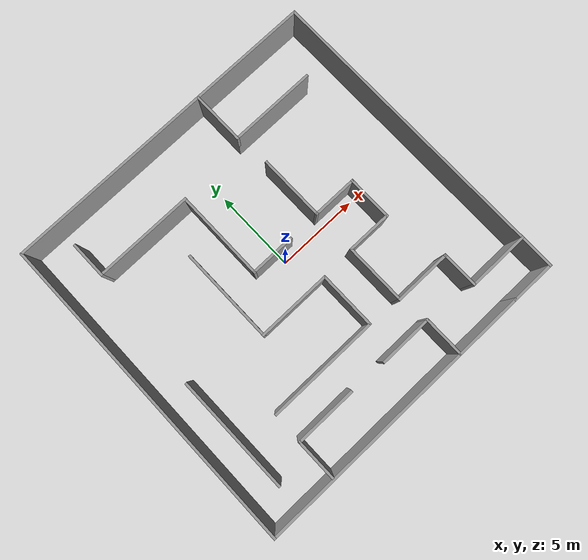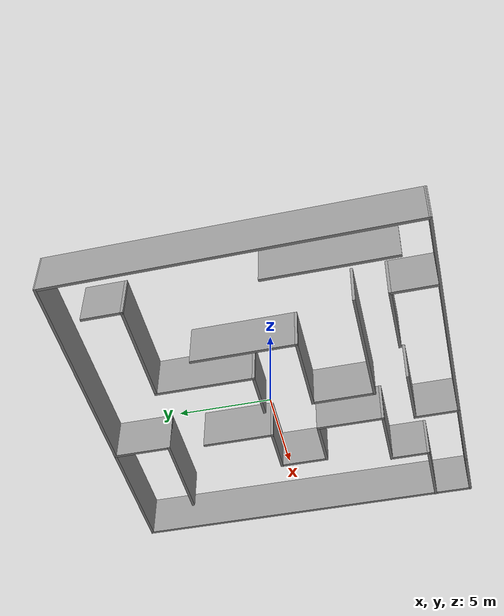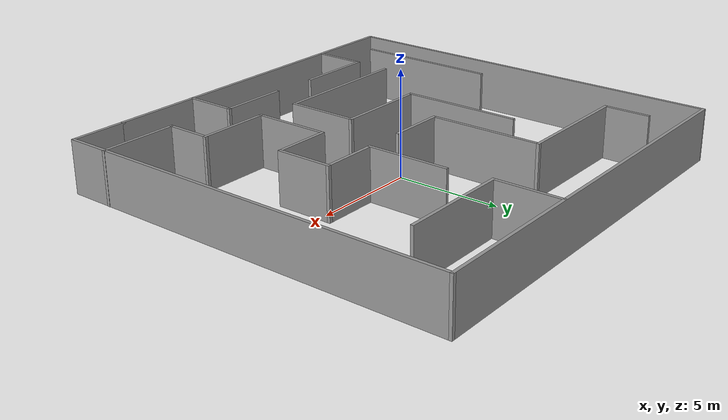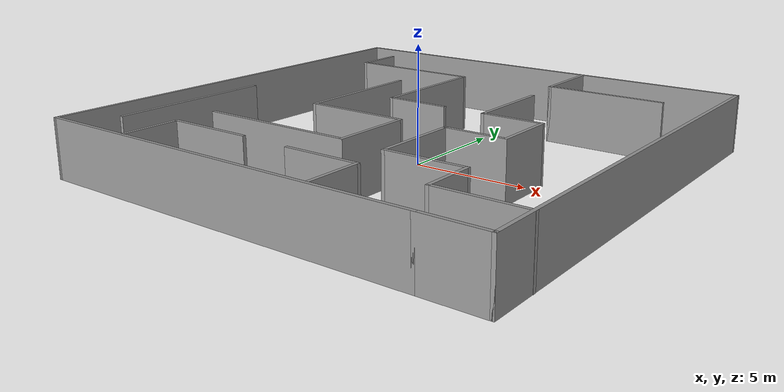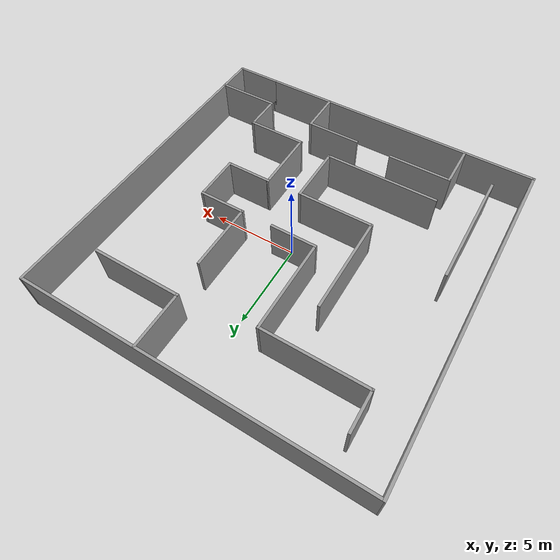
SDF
<?xml version='1.0'?>
<sdf version='1.7'>
  <model name='20231206.world'>
    <pose>-0.134977 -0.121571 0 0 -0 0</pose>
    <link name='Wall_18'>
      <collision name='Wall_18_Collision'>
        <geometry>
          <box>
            <size>17.25 0.15 2.5</size>
          </box>
        </geometry>
        <pose>0 0 1.25 0 -0 0</pose>
      </collision>
      <visual name='Wall_18_Visual'>
        <pose>0 0 1.25 0 -0 0</pose>
        <geometry>
          <box>
            <size>17.25 0.15 2.5</size>
          </box>
        </geometry>
        <material>
          <script>
            <uri>file://media/materials/scripts/gazebo.material</uri>
            <name>Gazebo/Grey</name>
          </script>
          <ambient>1 1 1 1</ambient>
        </material>
        <meta>
          <layer>0</layer>
        </meta>
      </visual>
      <pose>-1.30548 -9.675 0 0 -0 0</pose>
    </link>
    <link name='Wall_20'>
      <collision name='Wall_20_Collision'>
        <geometry>
          <box>
            <size>2.75 0.15 2.5</size>
          </box>
        </geometry>
        <pose>0 0 1.25 0 -0 0</pose>
      </collision>
      <visual name='Wall_20_Visual'>
        <pose>0 0 1.25 0 -0 0</pose>
        <geometry>
          <box>
            <size>2.75 0.15 2.5</size>
          </box>
        </geometry>
        <material>
          <script>
            <uri>file://media/materials/scripts/gazebo.material</uri>
            <name>Gazebo/Grey</name>
          </script>
          <ambient>1 1 1 1</ambient>
        </material>
        <meta>
          <layer>0</layer>
        </meta>
      </visual>
      <pose>8.54452 -9.675 0 0 -0 0</pose>
    </link>
    <link name='Wall_21'>
      <collision name='Wall_21_Collision'>
        <geometry>
          <box>
            <size>19.5 0.15 2.5</size>
          </box>
        </geometry>
        <pose>0 0 1.25 0 -0 0</pose>
      </collision>
      <visual name='Wall_21_Visual'>
        <pose>0 0 1.25 0 -0 0</pose>
        <geometry>
          <box>
            <size>19.5 0.15 2.5</size>
          </box>
        </geometry>
        <material>
          <script>
            <uri>file://media/materials/scripts/gazebo.material</uri>
            <name>Gazebo/Grey</name>
          </script>
          <ambient>1 1 1 1</ambient>
        </material>
        <meta>
          <layer>0</layer>
        </meta>
      </visual>
      <pose>9.84452 0 0 0 -0 1.5708</pose>
    </link>
    <link name='Wall_22'>
      <collision name='Wall_22_Collision'>
        <geometry>
          <box>
            <size>19.75 0.15 2.5</size>
          </box>
        </geometry>
        <pose>0 0 1.25 0 -0 0</pose>
      </collision>
      <visual name='Wall_22_Visual'>
        <pose>0 0 1.25 0 -0 0</pose>
        <geometry>
          <box>
            <size>19.75 0.15 2.5</size>
          </box>
        </geometry>
        <material>
          <script>
            <uri>file://media/materials/scripts/gazebo.material</uri>
            <name>Gazebo/Grey</name>
          </script>
          <ambient>1 1 1 1</ambient>
        </material>
        <meta>
          <layer>0</layer>
        </meta>
      </visual>
      <pose>0.044517 9.675 0 0 -0 3.14159</pose>
    </link>
    <link name='Wall_23'>
      <collision name='Wall_23_Collision'>
        <geometry>
          <box>
            <size>19.5003 0.15 2.5</size>
          </box>
        </geometry>
        <pose>0 0 1.25 0 -0 0</pose>
      </collision>
      <visual name='Wall_23_Visual'>
        <pose>0 0 1.25 0 -0 0</pose>
        <geometry>
          <box>
            <size>19.5003 0.15 2.5</size>
          </box>
        </geometry>
        <material>
          <script>
            <uri>file://media/materials/scripts/gazebo.material</uri>
            <name>Gazebo/Grey</name>
          </script>
          <ambient>1 1 1 1</ambient>
        </material>
        <meta>
          <layer>0</layer>
        </meta>
      </visual>
      <pose>-9.80548 0 0 0 -0 -1.57596</pose>
    </link>
    <link name='Wall_25'>
      <collision name='Wall_25_Collision'>
        <geometry>
          <box>
            <size>3.75 0.15 2.5</size>
          </box>
        </geometry>
        <pose>0 0 1.25 0 -0 0</pose>
      </collision>
      <visual name='Wall_25_Visual'>
        <pose>0 0 1.25 0 -0 0</pose>
        <geometry>
          <box>
            <size>3.75 0.15 2.5</size>
          </box>
        </geometry>
        <material>
          <script>
            <uri>file://media/materials/scripts/gazebo.material</uri>
            <name>Gazebo/Grey</name>
          </script>
          <ambient>1 1 1 1</ambient>
        </material>
        <meta>
          <layer>0</layer>
        </meta>
      </visual>
      <pose>8.05587 -7.65949 0 0 -0 3.14159</pose>
    </link>
    <link name='Wall_26'>
      <collision name='Wall_26_Collision'>
        <geometry>
          <box>
            <size>2.25 0.15 2.5</size>
          </box>
        </geometry>
        <pose>0 0 1.25 0 -0 0</pose>
      </collision>
      <visual name='Wall_26_Visual'>
        <pose>0 0 1.25 0 -0 0</pose>
        <geometry>
          <box>
            <size>2.25 0.15 2.5</size>
          </box>
        </geometry>
        <material>
          <script>
            <uri>file://media/materials/scripts/gazebo.material</uri>
            <name>Gazebo/Grey</name>
          </script>
          <ambient>1 1 1 1</ambient>
        </material>
        <meta>
          <layer>0</layer>
        </meta>
      </visual>
      <pose>6.25587 -6.60949 0 0 -0 1.5708</pose>
    </link>
    <link name='Wall_27'>
      <collision name='Wall_27_Collision'>
        <geometry>
          <box>
            <size>3.5 0.15 2.5</size>
          </box>
        </geometry>
        <pose>0 0 1.25 0 -0 0</pose>
      </collision>
      <visual name='Wall_27_Visual'>
        <pose>0 0 1.25 0 -0 0</pose>
        <geometry>
          <box>
            <size>3.5 0.15 2.5</size>
          </box>
        </geometry>
        <material>
          <script>
            <uri>file://media/materials/scripts/gazebo.material</uri>
            <name>Gazebo/Grey</name>
          </script>
          <ambient>1 1 1 1</ambient>
        </material>
        <meta>
          <layer>0</layer>
        </meta>
      </visual>
      <pose>4.58087 -5.55949 0 0 -0 3.14159</pose>
    </link>
    <link name='Wall_28'>
      <collision name='Wall_28_Collision'>
        <geometry>
          <box>
            <size>3.75 0.15 2.5</size>
          </box>
        </geometry>
        <pose>0 0 1.25 0 -0 0</pose>
      </collision>
      <visual name='Wall_28_Visual'>
        <pose>0 0 1.25 0 -0 0</pose>
        <geometry>
          <box>
            <size>3.75 0.15 2.5</size>
          </box>
        </geometry>
        <material>
          <script>
            <uri>file://media/materials/scripts/gazebo.material</uri>
            <name>Gazebo/Grey</name>
          </script>
          <ambient>1 1 1 1</ambient>
        </material>
        <meta>
          <layer>0</layer>
        </meta>
      </visual>
      <pose>2.90587 -3.75949 0 0 -0 1.5708</pose>
    </link>
    <link name='Wall_29'>
      <collision name='Wall_29_Collision'>
        <geometry>
          <box>
            <size>2.75 0.15 2.5</size>
          </box>
        </geometry>
        <pose>0 0 1.25 0 -0 0</pose>
      </collision>
      <visual name='Wall_29_Visual'>
        <pose>0 0 1.25 0 -0 0</pose>
        <geometry>
          <box>
            <size>2.75 0.15 2.5</size>
          </box>
        </geometry>
        <material>
          <script>
            <uri>file://media/materials/scripts/gazebo.material</uri>
            <name>Gazebo/Grey</name>
          </script>
          <ambient>1 1 1 1</ambient>
        </material>
        <meta>
          <layer>0</layer>
        </meta>
      </visual>
      <pose>4.20587 -1.95949 0 0 -0 0</pose>
    </link>
    <link name='Wall_30'>
      <collision name='Wall_30_Collision'>
        <geometry>
          <box>
            <size>2.75 0.15 2.5</size>
          </box>
        </geometry>
        <pose>0 0 1.25 0 -0 0</pose>
      </collision>
      <visual name='Wall_30_Visual'>
        <pose>0 0 1.25 0 -0 0</pose>
        <geometry>
          <box>
            <size>2.75 0.15 2.5</size>
          </box>
        </geometry>
        <material>
          <script>
            <uri>file://media/materials/scripts/gazebo.material</uri>
            <name>Gazebo/Grey</name>
          </script>
          <ambient>1 1 1 1</ambient>
        </material>
        <meta>
          <layer>0</layer>
        </meta>
      </visual>
      <pose>5.50587 -0.659488 0 0 -0 1.5708</pose>
    </link>
    <link name='Wall_33'>
      <collision name='Wall_33_Collision'>
        <geometry>
          <box>
            <size>2.5 0.15 2.5</size>
          </box>
        </geometry>
        <pose>0 0 1.25 0 -0 0</pose>
      </collision>
      <visual name='Wall_33_Visual'>
        <pose>0 0 1.25 0 -0 0</pose>
        <geometry>
          <box>
            <size>2.5 0.15 2.5</size>
          </box>
        </geometry>
        <material>
          <script>
            <uri>file://media/materials/scripts/gazebo.material</uri>
            <name>Gazebo/Grey</name>
          </script>
          <ambient>1 1 1 1</ambient>
        </material>
        <meta>
          <layer>0</layer>
        </meta>
      </visual>
      <pose>3.18587 -8.46249 0 0 -0 1.5708</pose>
    </link>
    <link name='Wall_34'>
      <collision name='Wall_34_Collision'>
        <geometry>
          <box>
            <size>3.25 0.15 2.5</size>
          </box>
        </geometry>
        <pose>0 0 1.25 0 -0 0</pose>
      </collision>
      <visual name='Wall_34_Visual'>
        <pose>0 0 1.25 0 -0 0</pose>
        <geometry>
          <box>
            <size>3.25 0.15 2.5</size>
          </box>
        </geometry>
        <material>
          <script>
            <uri>file://media/materials/scripts/gazebo.material</uri>
            <name>Gazebo/Grey</name>
          </script>
          <ambient>1 1 1 1</ambient>
        </material>
        <meta>
          <layer>0</layer>
        </meta>
      </visual>
      <pose>1.63587 -7.28749 0 0 -0 3.14159</pose>
    </link>
    <link name='Wall_36'>
      <collision name='Wall_36_Collision'>
        <geometry>
          <box>
            <size>3.75 0.15 2.5</size>
          </box>
        </geometry>
        <pose>0 0 1.25 0 -0 0</pose>
      </collision>
      <visual name='Wall_36_Visual'>
        <pose>0 0 1.25 0 -0 0</pose>
        <geometry>
          <box>
            <size>3.75 0.15 2.5</size>
          </box>
        </geometry>
        <material>
          <script>
            <uri>file://media/materials/scripts/gazebo.material</uri>
            <name>Gazebo/Grey</name>
          </script>
          <ambient>1 1 1 1</ambient>
        </material>
        <meta>
          <layer>0</layer>
        </meta>
      </visual>
      <pose>-3.99613 -7.19949 0 0 -0 3.14159</pose>
    </link>
    <link name='Wall_37'>
      <collision name='Wall_37_Collision'>
        <geometry>
          <box>
            <size>2.5 0.15 2.5</size>
          </box>
        </geometry>
        <pose>0 0 1.25 0 -0 0</pose>
      </collision>
      <visual name='Wall_37_Visual'>
        <pose>0 0 1.25 0 -0 0</pose>
        <geometry>
          <box>
            <size>2.5 0.15 2.5</size>
          </box>
        </geometry>
        <material>
          <script>
            <uri>file://media/materials/scripts/gazebo.material</uri>
            <name>Gazebo/Grey</name>
          </script>
          <ambient>1 1 1 1</ambient>
        </material>
        <meta>
          <layer>0</layer>
        </meta>
      </visual>
      <pose>-5.79613 -8.37449 0 0 -0 -1.5708</pose>
    </link>
    <link name='Wall_39'>
      <collision name='Wall_39_Collision'>
        <geometry>
          <box>
            <size>7 0.15 2.5</size>
          </box>
        </geometry>
        <pose>0 0 1.25 0 -0 0</pose>
      </collision>
      <visual name='Wall_39_Visual'>
        <pose>0 0 1.25 0 -0 0</pose>
        <geometry>
          <box>
            <size>7 0.15 2.5</size>
          </box>
        </geometry>
        <material>
          <script>
            <uri>file://media/materials/scripts/gazebo.material</uri>
            <name>Gazebo/Grey</name>
          </script>
          <ambient>1 1 1 1</ambient>
        </material>
        <meta>
          <layer>0</layer>
        </meta>
      </visual>
      <pose>-7.99213 -4.60249 0 0 -0 1.5708</pose>
    </link>
    <link name='Wall_41'>
      <collision name='Wall_41_Collision'>
        <geometry>
          <box>
            <size>6.75 0.15 2.5</size>
          </box>
        </geometry>
        <pose>0 0 1.25 0 -0 0</pose>
      </collision>
      <visual name='Wall_41_Visual'>
        <pose>0 0 1.25 0 -0 0</pose>
        <geometry>
          <box>
            <size>6.75 0.15 2.5</size>
          </box>
        </geometry>
        <material>
          <script>
            <uri>file://media/materials/scripts/gazebo.material</uri>
            <name>Gazebo/Grey</name>
          </script>
          <ambient>1 1 1 1</ambient>
        </material>
        <meta>
          <layer>0</layer>
        </meta>
      </visual>
      <pose>-2.41413 -5.40549 0 0 -0 3.14159</pose>
    </link>
    <link name='Wall_43'>
      <collision name='Wall_43_Collision'>
        <geometry>
          <box>
            <size>3.5 0.15 2.5</size>
          </box>
        </geometry>
        <pose>0 0 1.25 0 -0 0</pose>
      </collision>
      <visual name='Wall_43_Visual'>
        <pose>0 0 1.25 0 -0 0</pose>
        <geometry>
          <box>
            <size>3.5 0.15 2.5</size>
          </box>
        </geometry>
        <material>
          <script>
            <uri>file://media/materials/scripts/gazebo.material</uri>
            <name>Gazebo/Grey</name>
          </script>
          <ambient>1 1 1 1</ambient>
        </material>
        <meta>
          <layer>0</layer>
        </meta>
      </visual>
      <pose>0.885871 -3.73049 0 0 -0 1.5708</pose>
    </link>
    <link name='Wall_44'>
      <collision name='Wall_44_Collision'>
        <geometry>
          <box>
            <size>4.5 0.15 2.5</size>
          </box>
        </geometry>
        <pose>0 0 1.25 0 -0 0</pose>
      </collision>
      <visual name='Wall_44_Visual'>
        <pose>0 0 1.25 0 -0 0</pose>
        <geometry>
          <box>
            <size>4.5 0.15 2.5</size>
          </box>
        </geometry>
        <material>
          <script>
            <uri>file://media/materials/scripts/gazebo.material</uri>
            <name>Gazebo/Grey</name>
          </script>
          <ambient>1 1 1 1</ambient>
        </material>
        <meta>
          <layer>0</layer>
        </meta>
      </visual>
      <pose>-1.28913 -2.05549 0 0 -0 3.14159</pose>
    </link>
    <link name='Wall_45'>
      <collision name='Wall_45_Collision'>
        <geometry>
          <box>
            <size>5.75 0.15 2.5</size>
          </box>
        </geometry>
        <pose>0 0 1.25 0 -0 0</pose>
      </collision>
      <visual name='Wall_45_Visual'>
        <pose>0 0 1.25 0 -0 0</pose>
        <geometry>
          <box>
            <size>5.75 0.15 2.5</size>
          </box>
        </geometry>
        <material>
          <script>
            <uri>file://media/materials/scripts/gazebo.material</uri>
            <name>Gazebo/Grey</name>
          </script>
          <ambient>1 1 1 1</ambient>
        </material>
        <meta>
          <layer>0</layer>
        </meta>
      </visual>
      <pose>-3.46413 0.744512 0 0 -0 1.5708</pose>
    </link>
    <link name='Wall_47'>
      <collision name='Wall_47_Collision'>
        <geometry>
          <box>
            <size>5.5 0.15 2.5</size>
          </box>
        </geometry>
        <pose>0 0 1.25 0 -0 0</pose>
      </collision>
      <visual name='Wall_47_Visual'>
        <pose>0 0 1.25 0 -0 0</pose>
        <geometry>
          <box>
            <size>5.5 0.15 2.5</size>
          </box>
        </geometry>
        <material>
          <script>
            <uri>file://media/materials/scripts/gazebo.material</uri>
            <name>Gazebo/Grey</name>
          </script>
          <ambient>1 1 1 1</ambient>
        </material>
        <meta>
          <layer>0</layer>
        </meta>
      </visual>
      <pose>-1.59413 3.31551 0 0 -0 1.5708</pose>
    </link>
    <link name='Wall_48'>
      <collision name='Wall_48_Collision'>
        <geometry>
          <box>
            <size>6 0.15 2.5</size>
          </box>
        </geometry>
        <pose>0 0 1.25 0 -0 0</pose>
      </collision>
      <visual name='Wall_48_Visual'>
        <pose>0 0 1.25 0 -0 0</pose>
        <geometry>
          <box>
            <size>6 0.15 2.5</size>
          </box>
        </geometry>
        <material>
          <script>
            <uri>file://media/materials/scripts/gazebo.material</uri>
            <name>Gazebo/Grey</name>
          </script>
          <ambient>1 1 1 1</ambient>
        </material>
        <meta>
          <layer>0</layer>
        </meta>
      </visual>
      <pose>-4.51913 5.99051 0 0 -0 3.14159</pose>
    </link>
    <link name='Wall_49'>
      <collision name='Wall_49_Collision'>
        <geometry>
          <box>
            <size>2.25 0.15 2.5</size>
          </box>
        </geometry>
        <pose>0 0 1.25 0 -0 0</pose>
      </collision>
      <visual name='Wall_49_Visual'>
        <pose>0 0 1.25 0 -0 0</pose>
        <geometry>
          <box>
            <size>2.25 0.15 2.5</size>
          </box>
        </geometry>
        <material>
          <script>
            <uri>file://media/materials/scripts/gazebo.material</uri>
            <name>Gazebo/Grey</name>
          </script>
          <ambient>1 1 1 1</ambient>
        </material>
        <meta>
          <layer>0</layer>
        </meta>
      </visual>
      <pose>-7.44413 7.04051 0 0 -0 1.5708</pose>
    </link>
    <link name='Wall_51'>
      <collision name='Wall_51_Collision'>
        <geometry>
          <box>
            <size>2.75 0.15 2.5</size>
          </box>
        </geometry>
        <pose>0 0 1.25 0 -0 0</pose>
      </collision>
      <visual name='Wall_51_Visual'>
        <pose>0 0 1.25 0 -0 0</pose>
        <geometry>
          <box>
            <size>2.75 0.15 2.5</size>
          </box>
        </geometry>
        <material>
          <script>
            <uri>file://media/materials/scripts/gazebo.material</uri>
            <name>Gazebo/Grey</name>
          </script>
          <ambient>1 1 1 1</ambient>
        </material>
        <meta>
          <layer>0</layer>
        </meta>
      </visual>
      <pose>-0.294129 0.640512 0 0 -0 0</pose>
    </link>
    <link name='Wall_53'>
      <collision name='Wall_53_Collision'>
        <geometry>
          <box>
            <size>2.75 0.15 2.5</size>
          </box>
        </geometry>
        <pose>0 0 1.25 0 -0 0</pose>
      </collision>
      <visual name='Wall_53_Visual'>
        <pose>0 0 1.25 0 -0 0</pose>
        <geometry>
          <box>
            <size>2.75 0.15 2.5</size>
          </box>
        </geometry>
        <material>
          <script>
            <uri>file://media/materials/scripts/gazebo.material</uri>
            <name>Gazebo/Grey</name>
          </script>
          <ambient>1 1 1 1</ambient>
        </material>
        <meta>
          <layer>0</layer>
        </meta>
      </visual>
      <pose>4.20587 0.640512 0 0 -0 3.14159</pose>
    </link>
    <link name='Wall_55'>
      <collision name='Wall_55_Collision'>
        <geometry>
          <box>
            <size>4 0.15 2.5</size>
          </box>
        </geometry>
        <pose>0 0 1.25 0 -0 0</pose>
      </collision>
      <visual name='Wall_55_Visual'>
        <pose>0 0 1.25 0 -0 0</pose>
        <geometry>
          <box>
            <size>4 0.15 2.5</size>
          </box>
        </geometry>
        <material>
          <script>
            <uri>file://media/materials/scripts/gazebo.material</uri>
            <name>Gazebo/Grey</name>
          </script>
          <ambient>1 1 1 1</ambient>
        </material>
        <meta>
          <layer>0</layer>
        </meta>
      </visual>
      <pose>2.90587 2.56551 0 0 -0 1.5708</pose>
    </link>
    <link name='Wall_57'>
      <collision name='Wall_57_Collision'>
        <geometry>
          <box>
            <size>3.25 0.15 2.5</size>
          </box>
        </geometry>
        <pose>0 0 1.25 0 -0 0</pose>
      </collision>
      <visual name='Wall_57_Visual'>
        <pose>0 0 1.25 0 -0 0</pose>
        <geometry>
          <box>
            <size>3.25 0.15 2.5</size>
          </box>
        </geometry>
        <material>
          <script>
            <uri>file://media/materials/scripts/gazebo.material</uri>
            <name>Gazebo/Grey</name>
          </script>
          <ambient>1 1 1 1</ambient>
        </material>
        <meta>
          <layer>0</layer>
        </meta>
      </visual>
      <pose>2.67987 8.08651 0 0 -0 -1.5708</pose>
    </link>
    <link name='Wall_59'>
      <collision name='Wall_59_Collision'>
        <geometry>
          <box>
            <size>5.25 0.15 2.5</size>
          </box>
        </geometry>
        <pose>0 0 1.25 0 -0 0</pose>
      </collision>
      <visual name='Wall_59_Visual'>
        <pose>0 0 1.25 0 -0 0</pose>
        <geometry>
          <box>
            <size>5.25 0.15 2.5</size>
          </box>
        </geometry>
        <material>
          <script>
            <uri>file://media/materials/scripts/gazebo.material</uri>
            <name>Gazebo/Grey</name>
          </script>
          <ambient>1 1 1 1</ambient>
        </material>
        <meta>
          <layer>0</layer>
        </meta>
      </visual>
      <pose>5.22987 6.53651 0 0 -0 0</pose>
    </link>
    <static>1</static>
  </model>
</sdf>
